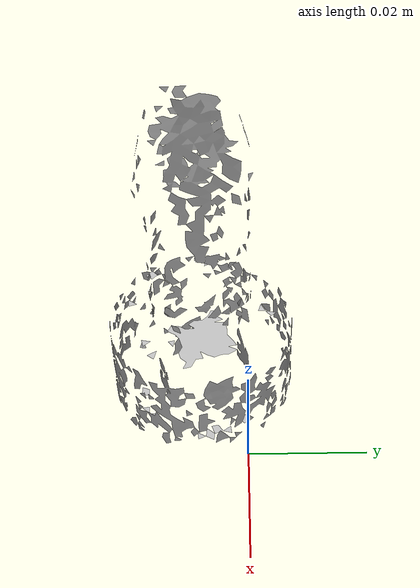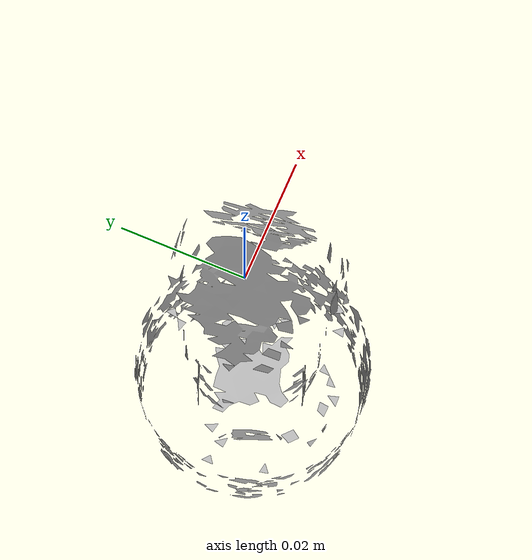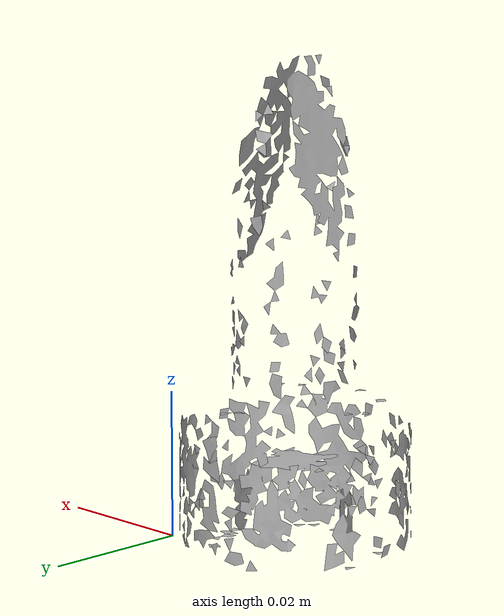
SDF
<?xml version="1.0" ?>
<sdf version="1.4">
  <model name='ycb_072-e_toy_airplane'>
    <link name='body'>
      <inertial>
        <mass>0.0248517608922</mass>
        <pose>-0.0154610525931 -0.00775245401845 0.0218599402397 0 0 0</pose>
        <inertia>
          <ixx>7.43820352042e-06</ixx>
          <ixy>1.00763343165e-08</ixy>
          <ixz>-5.58216679151e-08</ixz>
          <iyy>7.38476825882e-06</iyy>
          <iyz>7.16887838856e-09</iyz>
          <izz>2.28070837971e-06</izz>
        </inertia>
      </inertial>
      <visual name='ycb_072-e_toy_airplane_visual'>
        <pose>0 0 0 0 0 0</pose>
        <geometry>
          <mesh>
            <uri>model://ycb_072-e_toy_airplane/meshes/textured.dae</uri>
          </mesh>
        </geometry>
      </visual>
      <collision name='ycb_072-e_toy_airplane_collision'>
        <pose>0 0 0 0 0 0</pose>
        <geometry>
          <mesh>
            <uri>model://ycb_072-e_toy_airplane/meshes/nontextured.stl</uri>
          </mesh>
        </geometry>
        <max_contacts>10</max_contacts>
      </collision>
    </link>
  </model>
</sdf>
